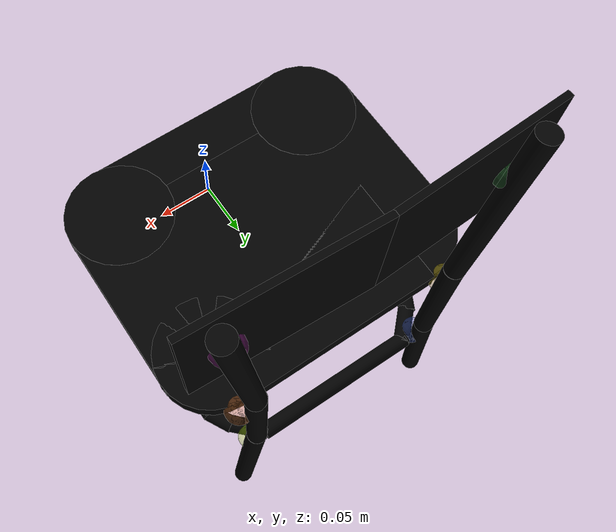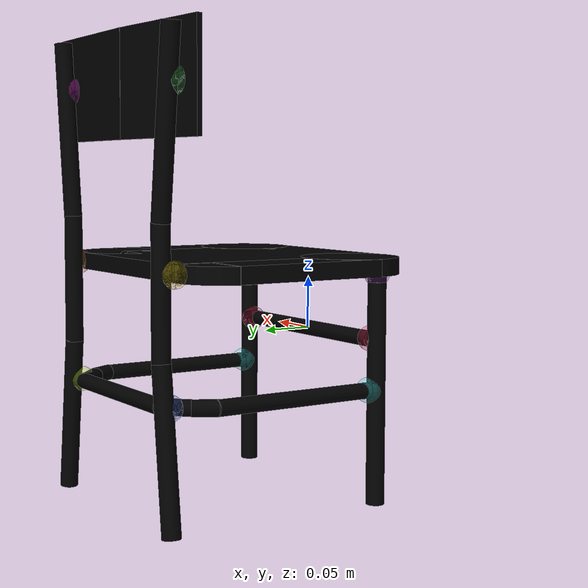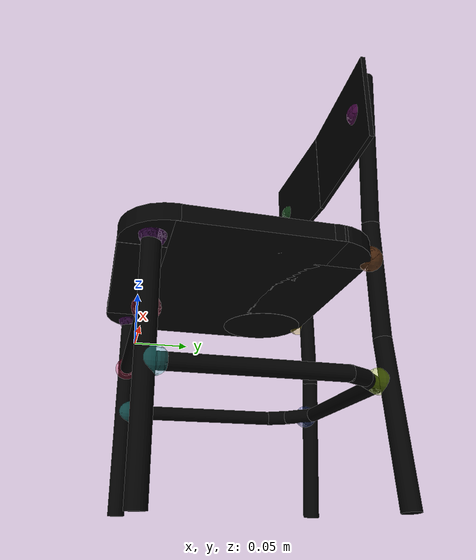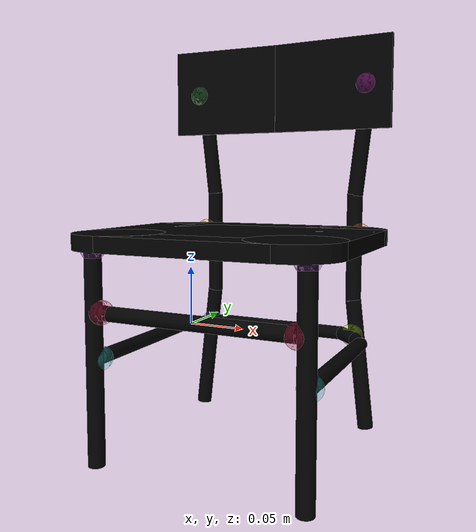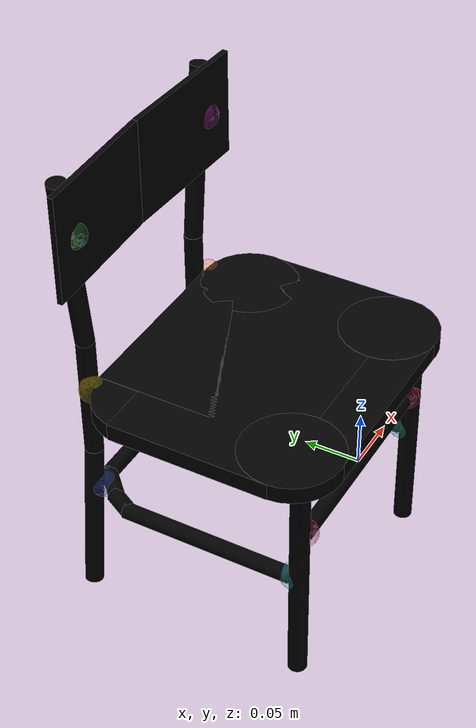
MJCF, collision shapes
<mujoco model="chair_balser_0115">
  <custom>
    <numeric data="-0.275772 0.129422 0.007124 1.0 0.0 0.0 0.0" name="0_part0_initpos" />
    <numeric data="0.376149 0.027328 0.00842 0.70441 -0.704527 0.061253 -0.060795" name="7_part7_initpos" />
    <numeric data="0.036779 -0.031849 0.007996 1.0 0.000356 0.000462 7.2e-05" name="6_part6_initpos" />
    <numeric data="-0.28514 0.250594 0.008346 0.707055 -0.008498 -0.707056 -0.008499" name="5_part5_initpos" />
    <numeric data="-0.282712 0.034813 0.008573 0.703702 -0.069309 -0.703702 0.069309" name="4_part4_initpos" />
    <numeric data="0.25925 0.024199 0.00842 0.011869 -0.011435 -0.707092 0.706929" name="3_part3_initpos" />
    <numeric data="0.046371 0.200692 0.005433 0.706734 -0.707072 0.00701 0.022966" name="2_part2_initpos" />
    <numeric data="-0.297152 -0.182409 0.007363 0.707019 0.000232 0.00023 0.707195" name="1_part1_initpos" />
  </custom>
  <asset>
    <mesh file="chair_balser_0115/0.stl" name="part0" scale="0.0006 0.0006 0.0006" />
    <mesh file="chair_balser_0115/7.stl" name="part7" scale="0.0006 0.0006 0.0006" />
    <mesh file="chair_balser_0115/6.stl" name="part6" scale="0.0006 0.0006 0.0006" />
    <mesh file="chair_balser_0115/5.stl" name="part5" scale="0.0006 0.0006 0.0006" />
    <mesh file="chair_balser_0115/4.stl" name="part4" scale="0.0006 0.0006 0.0006" />
    <mesh file="chair_balser_0115/3.stl" name="part3" scale="0.0006 0.0006 0.0006" />
    <mesh file="chair_balser_0115/2.stl" name="part2" scale="0.0006 0.0006 0.0006" />
    <mesh file="chair_balser_0115/1.stl" name="part1" scale="0.0006 0.0006 0.0006" />
  </asset>
  <equality>
    <weld active="false" body1="7_part7" body2="2_part2" solimp="1 1 0.5" solref="0.01 0.3" />
    <weld active="false" body1="3_part3" body2="2_part2" solimp="1 1 0.5" solref="0.01 0.3" />
    <weld active="false" body1="4_part4" body2="1_part1" solimp="1 1 0.5" solref="0.01 0.3" />
    <weld active="false" body1="5_part5" body2="1_part1" solimp="1 1 0.5" solref="0.01 0.3" />
    <weld active="false" body1="7_part7" body2="1_part1" solimp="1 1 0.5" solref="0.01 0.3" />
    <weld active="false" body1="7_part7" body2="6_part6" solimp="1 1 0.5" solref="0.01 0.3" />
    <weld active="false" body1="3_part3" body2="1_part1" solimp="1 1 0.5" solref="0.01 0.3" />
    <weld active="false" body1="0_part0" body2="4_part4" solimp="1 1 0.5" solref="0.01 0.3" />
    <weld active="false" body1="0_part0" body2="5_part5" solimp="1 1 0.5" solref="0.01 0.3" />
    <weld active="false" body1="6_part6" body2="4_part4" solimp="1 1 0.5" solref="0.01 0.3" />
    <weld active="false" body1="6_part6" body2="5_part5" solimp="1 1 0.5" solref="0.01 0.3" />
    <weld active="false" body1="6_part6" body2="3_part3" solimp="1 1 0.5" solref="0.01 0.3" />
  </equality>
  <worldbody>
    <body name="0_part0" pos="0.0 0.0 0.0" quat="1 0 0 0">
      <geom conaffinity="0" contype="0" density="0" mesh="part0" name="0_part0_mesh" pos="0.0 0.0 0.0" rgba="0.82 0.71 0.55 1" type="mesh" />
      <site name="0_part0_horizontal_radius_site" pos="0.0 0.0 0.0" quat="1 0 0 0" rgba="0 0 0 0" size="0.012" />
      <site name="0_part0_top_site" pos="0.0 0.0 0.007619999999999999" quat="1 0 0 0" rgba="0 0 0 0" size="0.012" />
      <site name="0_part0_bottom_site" pos="0.0 0.0 -0.007619999999999999" quat="1 0 0 0" rgba="0 0 0 0" size="0.012" />
      <site name="0_part0_corner_site8" pos="-0.10563468371999998 0.007619999999999999 0.007619999999999999" quat="1 0 0 0" rgba="0 0 0 0" size="0.012" />
      <site name="0_part0_corner_site7" pos="0.10563468371999998 0.007619999999999999 0.007619999999999999" quat="1 0 0 0" rgba="0 0 0 0" size="0.012" />
      <site name="0_part0_corner_site6" pos="0.10563468371999998 -0.007619999999999999 0.007619999999999999" quat="1 0 0 0" rgba="0 0 0 0" size="0.012" />
      <site name="0_part0_corner_site5" pos="-0.10563468371999998 -0.007619999999999999 0.007619999999999999" quat="1 0 0 0" rgba="0 0 0 0" size="0.012" />
      <site name="0_part0_corner_site4" pos="-0.10563468371999998 0.007619999999999999 -0.007619999999999999" quat="1 0 0 0" rgba="0 0 0 0" size="0.012" />
      <site name="0_part0_corner_site3" pos="0.10563468371999998 0.007619999999999999 -0.007619999999999999" quat="1 0 0 0" rgba="0 0 0 0" size="0.012" />
      <site name="0_part0_corner_site2" pos="0.10563468371999998 -0.007619999999999999 -0.007619999999999999" quat="1 0 0 0" rgba="0 0 0 0" size="0.012" />
      <site name="0_part0_corner_site1" pos="-0.10563468371999998 -0.007619999999999999 -0.007619999999999999" quat="1 0 0 0" rgba="0 0 0 0" size="0.012" />
      <site name="frontsupp-frontlegs,conn_site2" pos="-0.09894 2.0592e-05 0.0006" quat="0.7071067 0 -0.7071068 0" rgba="0.9019 0.0980 0.2941 0.3" size="0.012" />
      <site name="frontsupp-frontlegs,conn_site1" pos="0.09996 2.0592e-05 -0.00066" quat="0.7071067 0 0.7071068 0" rgba="0.9019 0.0980 0.2941 0.3" size="0.012" />
      <geom density="50" name="noviz_collision_0_part0_0" pos="0.0 0.0 0.0" quat="0.7071067 0 0.7071068 0" rgba="0 0 0 0" size="0.00735 0.0987" solref="0.001 3" type="cylinder" />
    </body>
    <body name="7_part7" pos="-0.09673416617999998 0.21222663083999996 0.06095999999999999" quat="1 0 0 0">
      <geom conaffinity="0" contype="0" density="0" mesh="part7" name="7_part7_mesh" pos="0.0 0.0 0.0" rgba="0.82 0.71 0.55 1" type="mesh" />
      <site name="7_part7_horizontal_radius_site" pos="0.0 0.0 0.0" quat="1 0 0 0" rgba="0 0 0 0" size="0.012" />
      <site name="7_part7_top_site" pos="0.0 0.0 0.21336" quat="1 0 0 0" rgba="0 0 0 0" size="0.012" />
      <site name="7_part7_bottom_site" pos="0.0 0.0 -0.21336" quat="1 0 0 0" rgba="0 0 0 0" size="0.012" />
      <site name="7_part7_corner_site8" pos="-0.01851833382 0.008572499999999999 0.21336" quat="1 0 0 0" rgba="0 0 0 0" size="0.012" />
      <site name="7_part7_corner_site7" pos="0.01851833382 0.008572499999999999 0.21336" quat="1 0 0 0" rgba="0 0 0 0" size="0.012" />
      <site name="7_part7_corner_site6" pos="0.01851833382 -0.008572499999999999 0.21336" quat="1 0 0 0" rgba="0 0 0 0" size="0.012" />
      <site name="7_part7_corner_site5" pos="-0.01851833382 -0.008572499999999999 0.21336" quat="1 0 0 0" rgba="0 0 0 0" size="0.012" />
      <site name="7_part7_corner_site4" pos="-0.01851833382 0.008572499999999999 -0.21336" quat="1 0 0 0" rgba="0 0 0 0" size="0.012" />
      <site name="7_part7_corner_site3" pos="0.01851833382 0.008572499999999999 -0.21336" quat="1 0 0 0" rgba="0 0 0 0" size="0.012" />
      <site name="7_part7_corner_site2" pos="0.01851833382 -0.008572499999999999 -0.21336" quat="1 0 0 0" rgba="0 0 0 0" size="0.012" />
      <site name="7_part7_corner_site1" pos="-0.01851833382 -0.008572499999999999 -0.21336" quat="1 0 0 0" rgba="0 0 0 0" size="0.012" />
      <site name="rightleg-backpanel,0,conn_site2" pos="-0.005325834 -0.00816663 0.16703999999999997" quat="0.7071067 0.7071068 0 0" rgba="0.2352 0.7058 0.2941 0.3" size="0.012" />
      <site name="rightleg-seat,0,conn_site1" pos="0.0019341719999999998 -0.008826635999999999 0.00684" quat="0.7071067 0.7071068 0 0" rgba="1.0 0.8823 0.0980 0.3" size="0.012" />
      <site name="rightleg-botsupp,0,180,conn_site1" pos="0.008534172 -0.007446642 -0.106566" quat="0.7071067 0.7071068 0 0" rgba="0.2627 0.3882 0.8470 0.3" size="0.012" />
      <geom density="50" name="noviz_collision_7_part7_1" pos="0.009314171999999999 -8.58e-07 -0.0093" quat="1 0 0 0" rgba="0 0 0 0" size="0.008475 0.06" solref="0.001 3" type="cylinder" />
      <geom density="50" name="noviz_collision_7_part7_2" pos="-0.00022583399999999998 -8.58e-07 0.13235999999999998" quat="0.9983917 0 -0.05669299 0" rgba="0 0 0 0" size="0.008475 0.0828" solref="0.001 3" type="cylinder" />
      <geom density="50" name="noviz_collision_7_part7_3" pos="0.0007941719999999999 -8.58e-07 -0.14093999999999998" quat="0.9983917 0 0.05669279 0" rgba="0 0 0 0" size="0.008549999999999999 0.07319999999999999" solref="0.001 3" type="cylinder" />
    </body>
    <body name="6_part6" pos="0.0 0.08705057249999998 0.06857999999999999" quat="1 0 0 0">
      <geom conaffinity="0" contype="0" density="0" mesh="part6" name="6_part6_mesh" pos="0.0 0.0 0.0" rgba="0.82 0.71 0.55 1" type="mesh" />
      <site name="6_part6_horizontal_radius_site" pos="0.0 0.0 -0.0" quat="1 0 0 0" rgba="0 0 0 0" size="0.012" />
      <site name="6_part6_top_site" pos="0.0 0.0 0.007619999999999999" quat="1 0 0 0" rgba="0 0 0 0" size="0.012" />
      <site name="6_part6_bottom_site" pos="0.0 0.0 -0.007619999999999999" quat="1 0 0 0" rgba="0 0 0 0" size="0.012" />
      <site name="6_part6_corner_site8" pos="-0.13678296342 0.11629120205999999 0.007619999999999999" quat="1 0 0 0" rgba="0 0 0 0" size="0.012" />
      <site name="6_part6_corner_site7" pos="0.13678296342 0.11629120205999999 0.007619999999999999" quat="1 0 0 0" rgba="0 0 0 0" size="0.012" />
      <site name="6_part6_corner_site6" pos="0.13678296342 -0.11629120205999999 0.007619999999999999" quat="1 0 0 0" rgba="0 0 0 0" size="0.012" />
      <site name="6_part6_corner_site5" pos="-0.13678296342 -0.11629120205999999 0.007619999999999999" quat="1 0 0 0" rgba="0 0 0 0" size="0.012" />
      <site name="6_part6_corner_site4" pos="-0.13678296342 0.11629120205999999 -0.007619999999999999" quat="1 0 0 0" rgba="0 0 0 0" size="0.012" />
      <site name="6_part6_corner_site3" pos="0.13678296342 0.11629120205999999 -0.007619999999999999" quat="1 0 0 0" rgba="0 0 0 0" size="0.012" />
      <site name="6_part6_corner_site2" pos="0.13678296342 -0.11629120205999999 -0.007619999999999999" quat="1 0 0 0" rgba="0 0 0 0" size="0.012" />
      <site name="6_part6_corner_site1" pos="-0.13678296342 -0.11629120205999999 -0.007619999999999999" quat="1 0 0 0" rgba="0 0 0 0" size="0.012" />
      <site name="seat-rightleg,0,conn_site1" pos="-0.0948 0.11634941999999998 -0.00078" quat="0.7071067 0.7071068 0 0" rgba="1.0 0.8823 0.0980 0.3" size="0.012" />
      <site name="seat-leftleg,0,conn_site1" pos="0.09599999999999999 0.11568941999999999 -0.00078" quat="0.7071067 0.7071068 0 0" rgba="0.9607 0.5098 0.1921 0.3" size="0.012" />
      <site name="seatqw-frontlegs,conn_site2" pos="0.10733999999999999 -0.08597057999999999 -0.0072" quat="1 0 0 0" rgba="0.5686 0.1176 0.7058 0.3" size="0.012" />
      <site name="seatqw-frontlegs,conn_site1" pos="-0.10778399999999998 -0.08705058 -0.0072600059999999985" quat="1 0 0 0" rgba="0.5686 0.1176 0.7058 0.3" size="0.012" />
      <geom density="50" name="noviz_collision_6_part6_0" pos="-1.8e-06 0.0023958419999999996 -0.00011999999999999999" quat="1 0 0 0" rgba="0 0 0 0" size="0.13499999999999998 0.0735 0.0078" solref="0.001 3" type="box" />
      <geom density="50" name="noviz_collision_6_part6_1" pos="-1.8e-06 0.00024942599999999997 -0.00011999999999999999" quat="1 0 0 0" rgba="0 0 0 0" size="0.087 0.11399999999999999 0.0078" solref="0.001 3" type="box" />
      <geom density="50" name="noviz_collision_6_part6_2" pos="-0.09 -0.06929057999999999 0.0" quat="1 0 0 0" rgba="0 0 0 0" size="0.045 0.0078" solref="0.001 3" type="cylinder" />
      <geom density="50" name="noviz_collision_6_part6_3" pos="0.09029999999999999 -0.06929057999999999 5.9999999999999995e-05" quat="1 0 0 0" rgba="0 0 0 0" size="0.045 0.0078" solref="0.001 3" type="cylinder" />
      <geom density="50" name="noviz_collision_6_part6_4" pos="-0.09 0.06774941999999999 -0.00041999999999999996" quat="1 0 0 0" rgba="0 0 0 0" size="0.045 0.0078" solref="0.001 3" type="cylinder" />
      <geom density="50" name="noviz_collision_6_part6_5" pos="0.09059999999999999 0.06870942 -0.00011999999999999999" quat="1 0 0 0" rgba="0 0 0 0" size="0.045 0.0078" solref="0.001 3" type="cylinder" />
    </body>
    <body name="5_part5" pos="-0.10791100206 4.118394e-05 -0.041909999999999996" quat="1 0 0 0">
      <geom conaffinity="0" contype="0" density="0" mesh="part5" name="5_part5_mesh" pos="0.0 0.0 0.0" rgba="0.82 0.71 0.55 1" type="mesh" />
      <site name="5_part5_horizontal_radius_site" pos="-0.0 -0.0 0.0" quat="1 0 0 0" rgba="0 0 0 0" size="0.012" />
      <site name="5_part5_top_site" pos="0.0 0.0 0.11048999999999999" quat="1 0 0 0" rgba="0 0 0 0" size="0.012" />
      <site name="5_part5_bottom_site" pos="0.0 0.0 -0.11048999999999999" quat="1 0 0 0" rgba="0 0 0 0" size="0.012" />
      <site name="5_part5_corner_site8" pos="-0.008572499999999999 0.008572499999999999 0.11048999999999999" quat="1 0 0 0" rgba="0 0 0 0" size="0.012" />
      <site name="5_part5_corner_site7" pos="0.008572499999999999 0.008572499999999999 0.11048999999999999" quat="1 0 0 0" rgba="0 0 0 0" size="0.012" />
      <site name="5_part5_corner_site6" pos="0.008572499999999999 -0.008572499999999999 0.11048999999999999" quat="1 0 0 0" rgba="0 0 0 0" size="0.012" />
      <site name="5_part5_corner_site5" pos="-0.008572499999999999 -0.008572499999999999 0.11048999999999999" quat="1 0 0 0" rgba="0 0 0 0" size="0.012" />
      <site name="5_part5_corner_site4" pos="-0.008572499999999999 0.008572499999999999 -0.11048999999999999" quat="1 0 0 0" rgba="0 0 0 0" size="0.012" />
      <site name="5_part5_corner_site3" pos="0.008572499999999999 0.008572499999999999 -0.11048999999999999" quat="1 0 0 0" rgba="0 0 0 0" size="0.012" />
      <site name="5_part5_corner_site2" pos="0.008572499999999999 -0.008572499999999999 -0.11048999999999999" quat="1 0 0 0" rgba="0 0 0 0" size="0.012" />
      <site name="5_part5_corner_site1" pos="-0.008572499999999999 -0.008572499999999999 -0.11048999999999999" quat="1 0 0 0" rgba="0 0 0 0" size="0.012" />
      <site name="frontlegs-seatqw,conn_site1" pos="0.00012700199999999997 -4.1184e-05 0.10323" quat="1 0 0 0" rgba="0.5686 0.1176 0.7058 0.3" size="0.012" />
      <site name="frontlegs-botsuppw,0,180,conn_site1" pos="0.0024310019999999994 0.0062588159999999995 -0.004109999999999999" quat="0.7071067 -0.7071068 0 0" rgba="0.2745 0.9411 0.9411 0.3" size="0.012" />
      <site name="frontlegs-frontsupp,conn_site2" pos="0.008971007999999999 -2.0592e-05 0.04250999999999999" quat="0.7071067 0 -0.7071068 0" rgba="0.9019 0.0980 0.2941 0.3" size="0.012" />
      <geom density="50" name="noviz_collision_5_part5_0" pos="-2.4599999999999995e-07 -1.8e-08 -0.003612948" quat="1 0 0 0" rgba="0 0 0 0" size="0.008572253999999998 0.10679999999999999" solref="0.001 3" type="cylinder" />
    </body>
    <body name="4_part4" pos="0.10791100206 4.118394e-05 -0.041909999999999996" quat="1 0 0 0">
      <geom conaffinity="0" contype="0" density="0" mesh="part4" name="4_part4_mesh" pos="0.0 0.0 0.0" rgba="0.82 0.71 0.55 1" type="mesh" />
      <site name="4_part4_horizontal_radius_site" pos="0.0 -0.0 0.0" quat="1 0 0 0" rgba="0 0 0 0" size="0.012" />
      <site name="4_part4_top_site" pos="0.0 0.0 0.11048999999999999" quat="1 0 0 0" rgba="0 0 0 0" size="0.012" />
      <site name="4_part4_bottom_site" pos="0.0 0.0 -0.11048999999999999" quat="1 0 0 0" rgba="0 0 0 0" size="0.012" />
      <site name="4_part4_corner_site8" pos="-0.008572499999999999 0.008572499999999999 0.11048999999999999" quat="1 0 0 0" rgba="0 0 0 0" size="0.012" />
      <site name="4_part4_corner_site7" pos="0.008572499999999999 0.008572499999999999 0.11048999999999999" quat="1 0 0 0" rgba="0 0 0 0" size="0.012" />
      <site name="4_part4_corner_site6" pos="0.008572499999999999 -0.008572499999999999 0.11048999999999999" quat="1 0 0 0" rgba="0 0 0 0" size="0.012" />
      <site name="4_part4_corner_site5" pos="-0.008572499999999999 -0.008572499999999999 0.11048999999999999" quat="1 0 0 0" rgba="0 0 0 0" size="0.012" />
      <site name="4_part4_corner_site4" pos="-0.008572499999999999 0.008572499999999999 -0.11048999999999999" quat="1 0 0 0" rgba="0 0 0 0" size="0.012" />
      <site name="4_part4_corner_site3" pos="0.008572499999999999 0.008572499999999999 -0.11048999999999999" quat="1 0 0 0" rgba="0 0 0 0" size="0.012" />
      <site name="4_part4_corner_site2" pos="0.008572499999999999 -0.008572499999999999 -0.11048999999999999" quat="1 0 0 0" rgba="0 0 0 0" size="0.012" />
      <site name="4_part4_corner_site1" pos="-0.008572499999999999 -0.008572499999999999 -0.11048999999999999" quat="1 0 0 0" rgba="0 0 0 0" size="0.012" />
      <site name="frontlegs-seatqw,conn_site2" pos="-0.0005710079999999999 0.001038816 0.10328999999999999" quat="1 0 0 0" rgba="0.5686 0.1176 0.7058 0.3" size="0.012" />
      <site name="frontlegs-botsuppw,0,180,conn_site2" pos="0.0005689979999999999 0.007098815999999999 -0.00375" quat="0.7071067 -0.7071068 0 0" rgba="0.2745 0.9411 0.9411 0.3" size="0.012" />
      <site name="frontlegs-frontsupp,conn_site1" pos="-0.007950995999999998 -2.0592e-05 0.041249999999999995" quat="0.7071067 0 0.7071068 0" rgba="0.9019 0.0980 0.2941 0.3" size="0.012" />
      <geom density="50" name="noviz_collision_4_part4_0" pos="2.64e-07 -3e-08 -0.0036141059999999997" quat="1 0 0 0" rgba="0 0 0 0" size="0.008572769999999999 0.10679999999999999" solref="0.001 3" type="cylinder" />
    </body>
    <body name="3_part3" pos="0.09673416617999998 0.21222663083999996 0.06095999999999999" quat="1 0 0 0">
      <geom conaffinity="0" contype="0" density="0" mesh="part3" name="3_part3_mesh" pos="0.0 0.0 0.0" rgba="0.82 0.71 0.55 1" type="mesh" />
      <site name="3_part3_horizontal_radius_site" pos="0.0 0.0 0.0" quat="1 0 0 0" rgba="0 0 0 0" size="0.012" />
      <site name="3_part3_top_site" pos="0.0 0.0 0.21336" quat="1 0 0 0" rgba="0 0 0 0" size="0.012" />
      <site name="3_part3_bottom_site" pos="0.0 0.0 -0.21336" quat="1 0 0 0" rgba="0 0 0 0" size="0.012" />
      <site name="3_part3_corner_site8" pos="-0.01851833382 0.008572499999999999 0.21336" quat="1 0 0 0" rgba="0 0 0 0" size="0.012" />
      <site name="3_part3_corner_site7" pos="0.01851833382 0.008572499999999999 0.21336" quat="1 0 0 0" rgba="0 0 0 0" size="0.012" />
      <site name="3_part3_corner_site6" pos="0.01851833382 -0.008572499999999999 0.21336" quat="1 0 0 0" rgba="0 0 0 0" size="0.012" />
      <site name="3_part3_corner_site5" pos="-0.01851833382 -0.008572499999999999 0.21336" quat="1 0 0 0" rgba="0 0 0 0" size="0.012" />
      <site name="3_part3_corner_site4" pos="-0.01851833382 0.008572499999999999 -0.21336" quat="1 0 0 0" rgba="0 0 0 0" size="0.012" />
      <site name="3_part3_corner_site3" pos="0.01851833382 0.008572499999999999 -0.21336" quat="1 0 0 0" rgba="0 0 0 0" size="0.012" />
      <site name="3_part3_corner_site2" pos="0.01851833382 -0.008572499999999999 -0.21336" quat="1 0 0 0" rgba="0 0 0 0" size="0.012" />
      <site name="3_part3_corner_site1" pos="-0.01851833382 -0.008572499999999999 -0.21336" quat="1 0 0 0" rgba="0 0 0 0" size="0.012" />
      <site name="leftleg-backpanel,0,conn_site1" pos="0.0034658279999999994 -0.008106629999999998 0.16883999999999996" quat="0.7071067 0.7071068 0 0" rgba="0.9411 0.1960 0.9019 0.3" size="0.012" />
      <site name="leftleg-seat,0,conn_site1" pos="-0.0007341719999999998 -0.009486642 0.00684" quat="0.7071067 0.7071068 0 0" rgba="0.9607 0.5098 0.1921 0.3" size="0.012" />
      <site name="leftleg-botsupp,0,180,conn_site1" pos="-0.008774165999999998 -0.0075666299999999995 -0.1065" quat="0.7071067 0.7071068 0 0" rgba="0.7372 0.9647 0.0470 0.3" size="0.012" />
      <geom density="50" name="noviz_collision_3_part3_0" pos="-0.009494171999999999 -8.58e-07 -0.0093" quat="1 0 0 0" rgba="0 0 0 0" size="0.008475 0.06" solref="0.001 3" type="cylinder" />
      <geom density="50" name="noviz_collision_3_part3_1" pos="0.00010582799999999999 -8.58e-07 0.1314" quat="0.9983917 0 0.05669279 0" rgba="0 0 0 0" size="0.008475 0.0828" solref="0.001 3" type="cylinder" />
      <geom density="50" name="noviz_collision_3_part3_2" pos="-0.0010941719999999998 -8.58e-07 -0.1407" quat="0.9983917 0 -0.05669299 0" rgba="0 0 0 0" size="0.008549999999999999 0.07319999999999999" solref="0.001 3" type="cylinder" />
    </body>
    <body name="2_part2" pos="0.0020415865799999996 0.20224755426 0.23028849858" quat="1 0 0 0">
      <geom conaffinity="0" contype="0" density="0" mesh="part2" name="2_part2_mesh" pos="0.0 0.0 0.0" rgba="0.82 0.71 0.55 1" type="mesh" />
      <site name="2_part2_horizontal_radius_site" pos="0.0 -0.0 -0.0" quat="1 0 0 0" rgba="0 0 0 0" size="0.012" />
      <site name="2_part2_top_site" pos="0.0 0.0 0.049578009959999995" quat="1 0 0 0" rgba="0 0 0 0" size="0.012" />
      <site name="2_part2_bottom_site" pos="0.0 0.0 -0.049578009959999995" quat="1 0 0 0" rgba="0 0 0 0" size="0.012" />
      <site name="2_part2_corner_site8" pos="-0.13024412819999998 0.00568355868 0.049578009959999995" quat="1 0 0 0" rgba="0 0 0 0" size="0.012" />
      <site name="2_part2_corner_site7" pos="0.13024412819999998 0.00568355868 0.049578009959999995" quat="1 0 0 0" rgba="0 0 0 0" size="0.012" />
      <site name="2_part2_corner_site6" pos="0.13024412819999998 -0.00568355868 0.049578009959999995" quat="1 0 0 0" rgba="0 0 0 0" size="0.012" />
      <site name="2_part2_corner_site5" pos="-0.13024412819999998 -0.00568355868 0.049578009959999995" quat="1 0 0 0" rgba="0 0 0 0" size="0.012" />
      <site name="2_part2_corner_site4" pos="-0.13024412819999998 0.00568355868 -0.049578009959999995" quat="1 0 0 0" rgba="0 0 0 0" size="0.012" />
      <site name="2_part2_corner_site3" pos="0.13024412819999998 0.00568355868 -0.049578009959999995" quat="1 0 0 0" rgba="0 0 0 0" size="0.012" />
      <site name="2_part2_corner_site2" pos="0.13024412819999998 -0.00568355868 -0.049578009959999995" quat="1 0 0 0" rgba="0 0 0 0" size="0.012" />
      <site name="2_part2_corner_site1" pos="-0.13024412819999998 -0.00568355868 -0.049578009959999995" quat="1 0 0 0" rgba="0 0 0 0" size="0.012" />
      <site name="backpanel-leftleg,0,conn_site1" pos="0.09815843999999999 0.001872456 -0.000488508" quat="0.7071067 0.7071068 0 0" rgba="0.9411 0.1960 0.9019 0.3" size="0.012" />
      <site name="backpanel-rightleg,0,conn_site2" pos="-0.10410161999999999 0.00181245 -0.002288508" quat="0.7071067 0.7071068 0 0" rgba="0.2352 0.7058 0.2941 0.3" size="0.012" />
      <geom density="50" name="noviz_collision_2_part2_0" pos="0.059278415999999994 0.00061245 0.000291486" quat="0.9997621 0 0 -0.02181489" rgba="0 0 0 0" size="0.0672 0.0024 0.0489" solref="0.001 3" type="box" />
      <geom density="50" name="noviz_collision_2_part2_1" pos="-0.07056156 0.0006724559999999999 0.000291486" quat="0.9997621 0 0 0.02181499" rgba="0 0 0 0" size="0.063 0.0024 0.0489" solref="0.001 3" type="box" />
    </body>
    <body name="1_part1" pos="-1.8599999999999998e-09 0.1095593409 -0.04572" quat="1 0 0 0">
      <geom conaffinity="0" contype="0" density="0" mesh="part1" name="1_part1_mesh" pos="0.0 0.0 0.0" rgba="0.82 0.71 0.55 1" type="mesh" />
      <site name="1_part1_horizontal_radius_site" pos="0.0 -0.0 0.0" quat="1 0 0 0" rgba="0 0 0 0" size="0.012" />
      <site name="1_part1_top_site" pos="0.0 0.0 0.007354313159999999" quat="1 0 0 0" rgba="0 0 0 0" size="0.012" />
      <site name="1_part1_bottom_site" pos="0.0 0.0 -0.007354313159999999" quat="1 0 0 0" rgba="0 0 0 0" size="0.012" />
      <site name="1_part1_corner_site8" pos="-0.11498745353999999 0.10609798295999999 0.007354313159999999" quat="1 0 0 0" rgba="0 0 0 0" size="0.012" />
      <site name="1_part1_corner_site7" pos="0.11498745353999999 0.10609798295999999 0.007354313159999999" quat="1 0 0 0" rgba="0 0 0 0" size="0.012" />
      <site name="1_part1_corner_site6" pos="0.11498745353999999 -0.10609798295999999 0.007354313159999999" quat="1 0 0 0" rgba="0 0 0 0" size="0.012" />
      <site name="1_part1_corner_site5" pos="-0.11498745353999999 -0.10609798295999999 0.007354313159999999" quat="1 0 0 0" rgba="0 0 0 0" size="0.012" />
      <site name="1_part1_corner_site4" pos="-0.11498745353999999 0.10609798295999999 -0.007354313159999999" quat="1 0 0 0" rgba="0 0 0 0" size="0.012" />
      <site name="1_part1_corner_site3" pos="0.11498745353999999 0.10609798295999999 -0.007354313159999999" quat="1 0 0 0" rgba="0 0 0 0" size="0.012" />
      <site name="1_part1_corner_site2" pos="0.11498745353999999 -0.10609798295999999 -0.007354313159999999" quat="1 0 0 0" rgba="0 0 0 0" size="0.012" />
      <site name="1_part1_corner_site1" pos="-0.11498745353999999 -0.10609798295999999 -0.007354313159999999" quat="1 0 0 0" rgba="0 0 0 0" size="0.012" />
      <site name="botsupp-leftleg,0,180,conn_site1" pos="0.08795999999999998 0.09510065999999999 0.00017999999999999998" quat="0.7071067 0.7071068 0 0" rgba="0.7372 0.9647 0.0470 0.3" size="0.012" />
      <site name="botsupp-rightleg,0,180,conn_site1" pos="-0.08819999999999999 0.09522065999999998 0.00011399399999999998" quat="0.7071067 0.7071068 0 0" rgba="0.2627 0.3882 0.8470 0.3" size="0.012" />
      <site name="botsuppw-frontlegs,0,180,conn_site2" pos="0.10848 -0.10241934 5.9999999999999995e-05" quat="0.7071067 -0.7071068 0 0" rgba="0.2745 0.9411 0.9411 0.3" size="0.012" />
      <site name="botsuppw-frontlegs,0,180,conn_site1" pos="-0.10548 -0.10325933999999998 -0.0003" quat="0.7071067 -0.7071068 0 0" rgba="0.2745 0.9411 0.9411 0.3" size="0.012" />
      <geom density="50" name="noviz_collision_1_part1_0" pos="0.10751999999999999 -0.020339345999999998 0.0" quat="0.7071067 0.7071068 0 0" rgba="0 0 0 0" size="0.00735 0.0804" solref="0.001 3" type="cylinder" />
      <geom density="50" name="noviz_collision_1_part1_1" pos="0.08549999999999999 0.08772065999999999 0.0" quat="0.6532814 0.6532815 0.2705982 0.2705982" rgba="0 0 0 0" size="0.00735 0.0168" solref="0.001 3" type="cylinder" />
      <geom density="50" name="noviz_collision_1_part1_2" pos="-0.08501999999999998 0.08766065999999999 0.0" quat="0.6532815 0.6532816 -0.2705981 -0.2705981" rgba="0 0 0 0" size="0.00735 0.0168" solref="0.001 3" type="cylinder" />
      <geom density="50" name="noviz_collision_1_part1_3" pos="-0.10733999999999999 -0.02027934 0.0" quat="0.7071067 0.7071068 0 0" rgba="0 0 0 0" size="0.00735 0.0804" solref="0.001 3" type="cylinder" />
      <geom density="50" name="noviz_collision_1_part1_4" pos="0.10229999999999999 0.06732065999999999 -2.52e-07" quat="0.6861027 0.6861026 0.1710647 0.1710647" rgba="0 0 0 0" size="0.0075 0.012" solref="0.001 3" type="cylinder" />
      <geom density="50" name="noviz_collision_1_part15" pos="-0.10139999999999999 0.06816066 -2.52e-07" quat="0.6861027 0.6861027 -0.1710646 -0.1710646" rgba="0 0 0 0" size="0.0075 0.012" solref="0.001 3" type="cylinder" />
      <geom density="50" name="noviz_collision_1_part1_6" pos="-8.039999999999999e-07 0.09828065999999999 -2.52e-07" quat="0.7071067 0 0.7071068 0" rgba="0 0 0 0" size="0.00735 0.0768" solref="0.001 3" type="cylinder" />
    </body>
  </worldbody>
  <actuator />
  <sensor />
  <contact />
  <default />
</mujoco>
